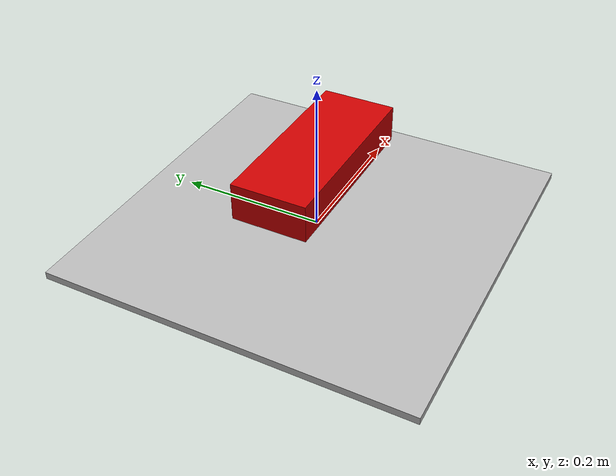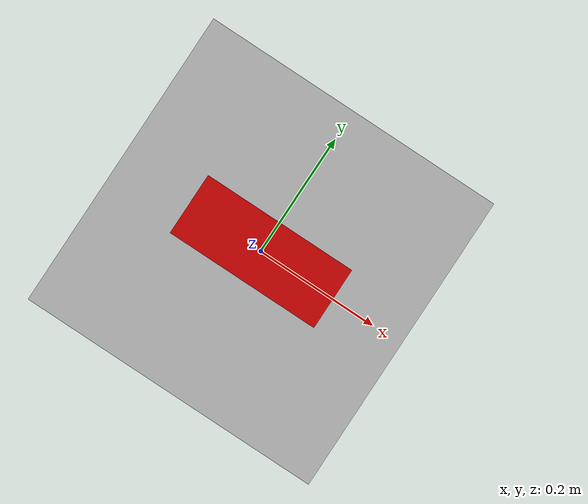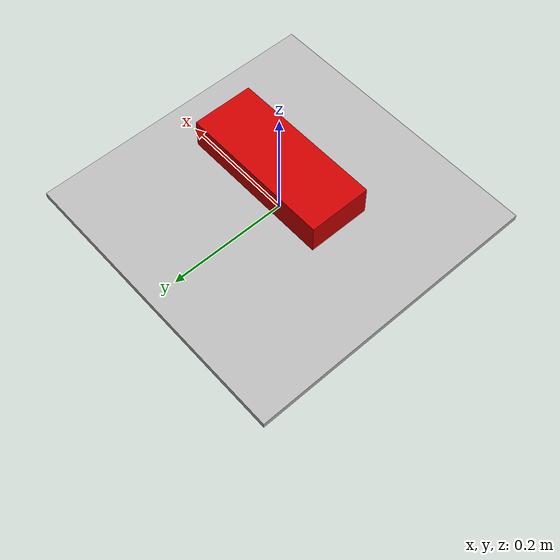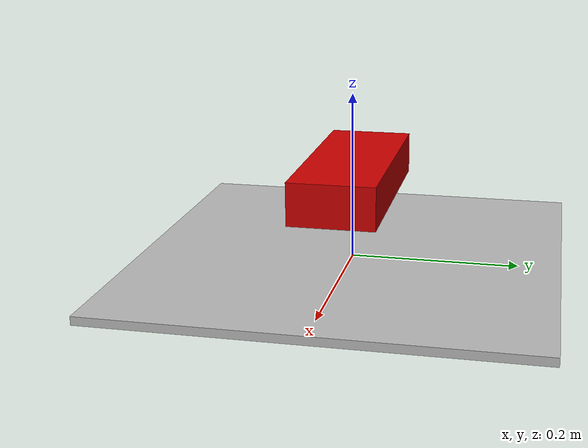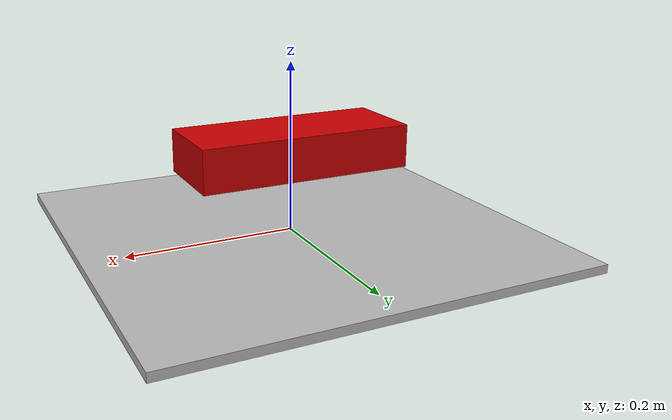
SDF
<?xml version="1.0" ?>
<sdf version="1.6">
  <world name="default">
    <light type="directional" name="sun">
      <cast_shadows>true</cast_shadows>
      <pose>0 0 10 0 0 0</pose>
      <diffuse>1 1 1 1</diffuse>
      <specular>0.5 0.5 0.5 1</specular>
      <attenuation>
        <range>1000</range>
        <constant>0.9</constant>
        <linear>0.01</linear>
        <quadratic>0.001</quadratic>
      </attenuation>
      <direction>-0.5 0.1 -0.9</direction>
    </light>
    <model name="motor_model_demo">
      <pose>0 0 0 0 0 0</pose>
      <link name="base_link">
        <pose>0.0 0.0 0.0 0 0 0</pose>
        <inertial>
          <inertia>
            <ixx>2.501</ixx>
            <ixy>0</ixy>
            <ixz>0</ixz>
            <iyy>2.501</iyy>
            <iyz>0</iyz>
            <izz>5</izz>
          </inertia>
          <mass>120.0</mass>
        </inertial>
        <visual name="base_visual">
          <pose>0.0 0.0 0.0 0 0 0</pose>
          <geometry>
            <box>
              <size>0.5 0.5 0.01</size>
            </box>
          </geometry>
        </visual>
        <collision name="base_collision">
          <pose>0.0 0.0 0.0 0 0 0</pose>
          <geometry>
            <box>
              <size>0.5 0.5 0.01</size>
            </box>
          </geometry>
        </collision>
      </link>
      <link name="rotor">
        <pose>0.0 0.0 0.1 0 0 0</pose>
        <inertial>
          <inertia>
            <ixx>0.032</ixx>
            <ixy>0</ixy>
            <ixz>0</ixz>
            <iyy>0.032</iyy>
            <iyz>0</iyz>
            <izz>0.00012</izz>
          </inertia>
          <mass>0.6</mass>
        </inertial>
        <visual name="visual">
          <geometry>
            <box>
              <size>0.25 0.1 0.05</size>
            </box>
          </geometry>
          <material>
            <ambient>0.2 0.8 0.2 1</ambient>
            <diffuse>0.8 0 0 1</diffuse>
          </material>
        </visual>
        <collision name="collision">
          <geometry>
            <box>
              <size>0.25 0.1 0.05</size>
            </box>
          </geometry>
        </collision>
      </link>

      <joint name="world_fixed" type="fixed">
        <parent>world</parent>
        <child>base_link</child>
      </joint>

      <joint name="joint_0" type="revolute">
        <pose>0 0 -0.5 0 0 0</pose>
        <parent>base_link</parent>
        <child>rotor</child>
        <axis>
          <xyz>0 0 1</xyz>
          <dynamics>
            <damping>1.0e-5</damping>
          </dynamics>
        </axis>
      </joint>

      <plugin filename="gz-sim-lift-drag-system"
        name="gz::sim::systems::LiftDrag">
        <a0>0.3</a0>
        <alpha_stall>1.4</alpha_stall>
        <cla>4.2500</cla>
        <cda>0.10</cda>
        <cma>0.0</cma>
        <cla_stall>-0.025</cla_stall>
        <cda_stall>0.0</cda_stall>
        <cma_stall>0.0</cma_stall>
        <area>0.002</area>
        <air_density>1.2041</air_density>
        <cp>0.084 0 0</cp>
        <forward>0 1 0</forward>
        <upward>0 0 1</upward>
        <link_name>rotor</link_name>
      </plugin>

      <plugin filename="gz-sim-joint-state-publisher-system"
        name="gz::sim::systems::JointStatePublisher">
      </plugin>

      <plugin filename="MotorPlugin" name="MotorPlugin">

        <control channel="0">
          <joint_name>joint_0</joint_name>
          <voltage_bat>16</voltage_bat>
          <speed_constant>920</speed_constant>
          <resistance>0.115</resistance>
          <no_load_current>0.8</no_load_current>
          <cmd_topic>joint_0_topic</cmd_topic>
          <multiplier>838</multiplier>
          <offset>0</offset>
          <thermal_resistance>1.40</thermal_resistance>
          <thermal_capacitance>214.28</thermal_capacitance>
          <ambient_temperature>25.0</ambient_temperature>
        </control>
      </plugin>
    </model>
  </world>
</sdf>
